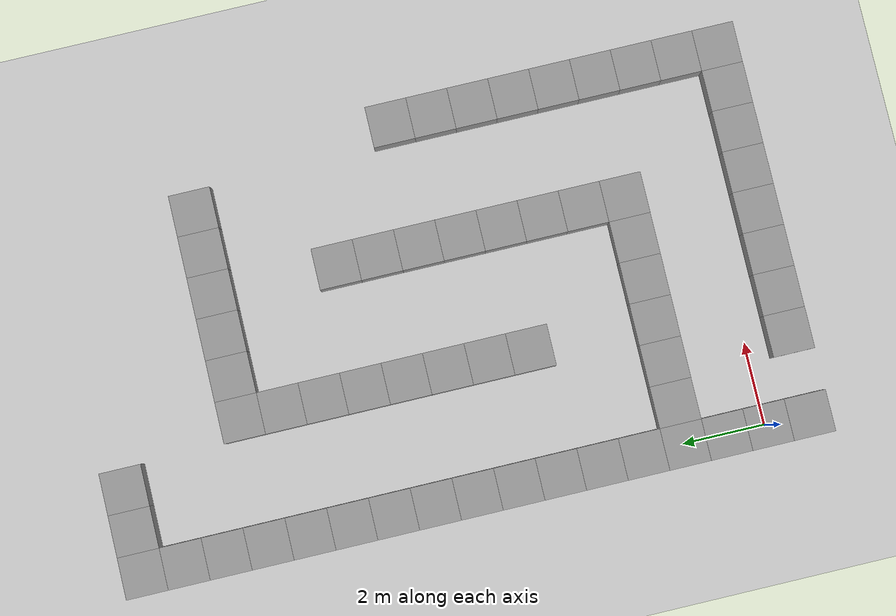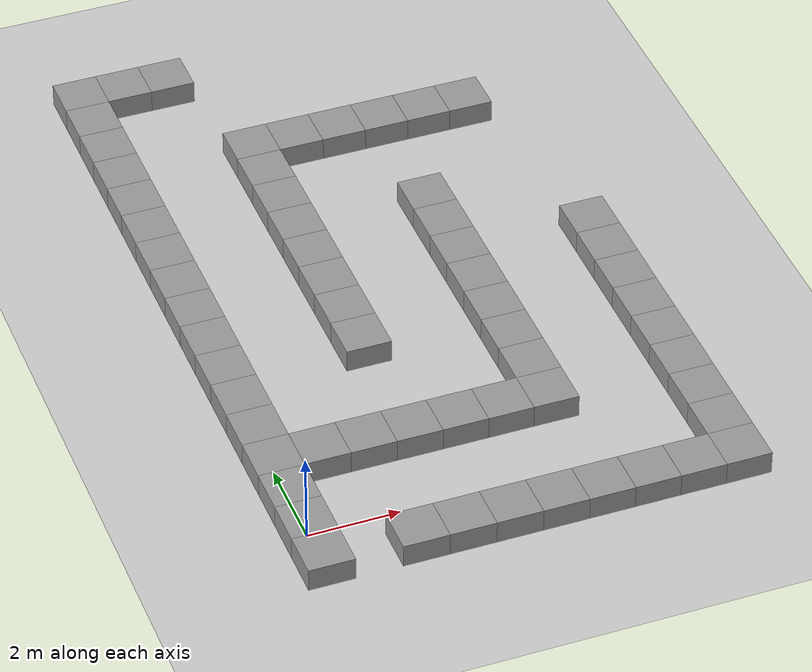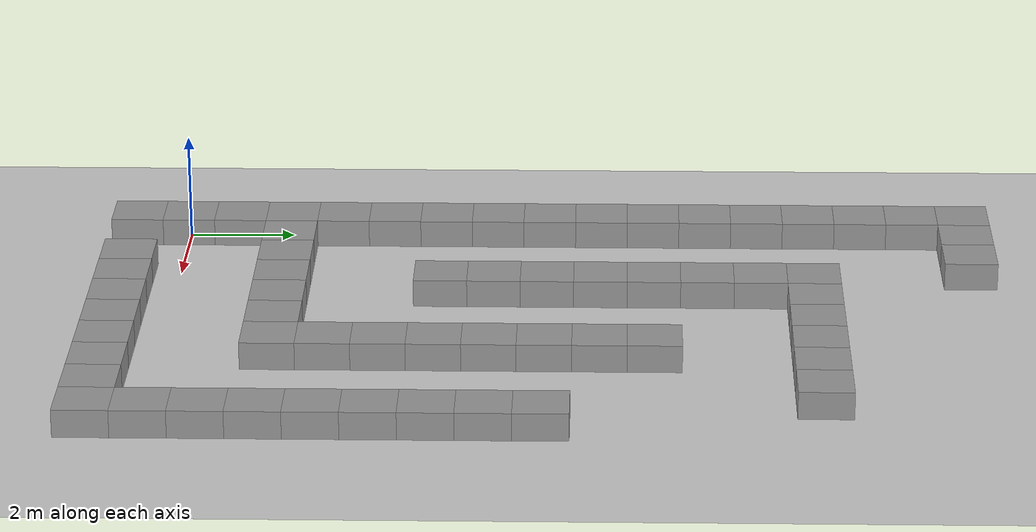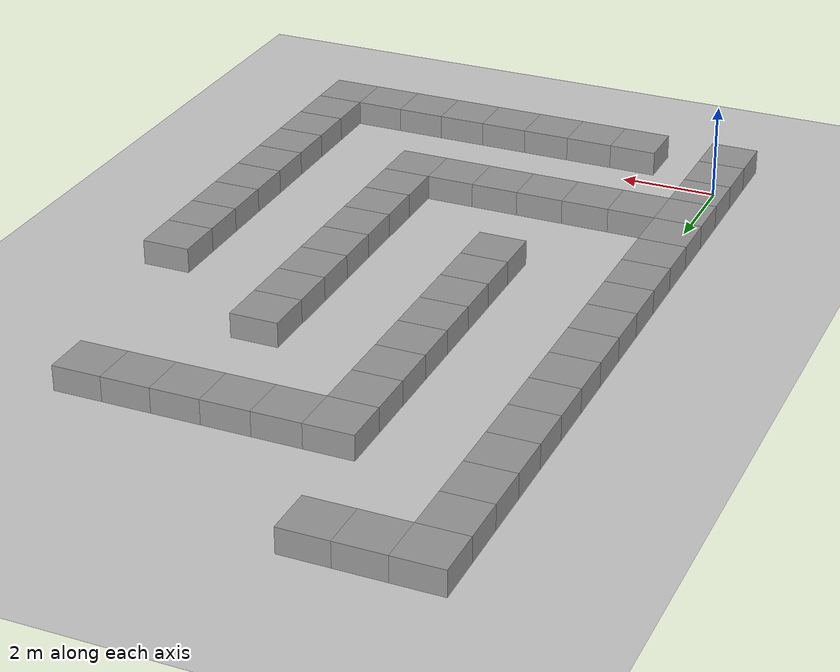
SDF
<sdf version="1.4">
 <world name="default">
  <model name="ground_plane">
   <static>1</static>
   <link name="link">
    <collision name="collision">
     <geometry><plane><normal>0 0 1</normal><size>100 100</size></plane></geometry>
     <surface><friction><ode><mu>100</mu><mu2>50</mu2></ode></friction></surface>
    </collision>
    <visual name="visual">
     <cast_shadows>0</cast_shadows>
     <geometry><plane><normal>0 0 1</normal><size>100 100</size></plane></geometry>
     <material>
      <script><uri>file://media/materials/scripts/gazebo.material</uri><name>Gazebo/Grey</name></script>
     </material>
    </visual>
    <velocity_decay><linear>0</linear><angular>0</angular></velocity_decay>
   </link>
  </model>
  <model name="unit_box_1">
   <pose>0 -1 0 0 -0 0</pose>
   <link name="link">
    <inertial>
     <mass>1</mass>
     <inertia><ixx>1</ixx><ixy>0</ixy><ixz>0</ixz><iyy>1</iyy><iyz>0</iyz><izz>1</izz></inertia>
    </inertial>
    <collision name="collision"><geometry><box><size>1 1 1</size></box></geometry></collision>
    <visual name="visual">
     <geometry><box><size>1 1 1</size></box></geometry>
     <material>
      <script><uri>file://media/materials/scripts/gazebo.material</uri><name>Gazebo/Grey</name></script>
     </material>
    </visual>
    <velocity_decay><linear>0</linear><angular>0</angular></velocity_decay>
   </link>
   <static>1</static>
  </model>
  <model name="unit_box_2">
   <pose>2 -1 0 0 -0 0</pose>
   <link name="link">
    <inertial>
     <mass>1</mass>
     <inertia><ixx>1</ixx><ixy>0</ixy><ixz>0</ixz><iyy>1</iyy><iyz>0</iyz><izz>1</izz></inertia>
    </inertial>
    <collision name="collision"><geometry><box><size>1 1 1</size></box></geometry></collision>
    <visual name="visual">
     <geometry><box><size>1 1 1</size></box></geometry>
     <material>
      <script><uri>file://media/materials/scripts/gazebo.material</uri><name>Gazebo/Grey</name></script>
     </material>
    </visual>
    <velocity_decay><linear>0</linear><angular>0</angular></velocity_decay>
   </link>
   <static>1</static>
  </model>
  <model name="unit_box_3">
   <pose>3 -1 0 0 -0 0</pose>
   <link name="link">
    <inertial>
     <mass>1</mass>
     <inertia><ixx>1</ixx><ixy>0</ixy><ixz>0</ixz><iyy>1</iyy><iyz>0</iyz><izz>1</izz></inertia>
    </inertial>
    <collision name="collision"><geometry><box><size>1 1 1</size></box></geometry></collision>
    <visual name="visual">
     <geometry><box><size>1 1 1</size></box></geometry>
     <material>
      <script><uri>file://media/materials/scripts/gazebo.material</uri><name>Gazebo/Grey</name></script>
     </material>
    </visual>
    <velocity_decay><linear>0</linear><angular>0</angular></velocity_decay>
   </link>
   <static>1</static>
  </model>
  <model name="unit_box_4">
   <pose>4 -1 0 0 -0 0</pose>
   <link name="link">
    <inertial>
     <mass>1</mass>
     <inertia><ixx>1</ixx><ixy>0</ixy><ixz>0</ixz><iyy>1</iyy><iyz>0</iyz><izz>1</izz></inertia>
    </inertial>
    <collision name="collision"><geometry><box><size>1 1 1</size></box></geometry></collision>
    <visual name="visual">
     <geometry><box><size>1 1 1</size></box></geometry>
     <material>
      <script><uri>file://media/materials/scripts/gazebo.material</uri><name>Gazebo/Grey</name></script>
     </material>
    </visual>
    <velocity_decay><linear>0</linear><angular>0</angular></velocity_decay>
   </link>
   <static>1</static>
  </model>
  <model name="unit_box_5">
   <pose>5 -1 0 0 -0 0</pose>
   <link name="link">
    <inertial>
     <mass>1</mass>
     <inertia><ixx>1</ixx><ixy>0</ixy><ixz>0</ixz><iyy>1</iyy><iyz>0</iyz><izz>1</izz></inertia>
    </inertial>
    <collision name="collision"><geometry><box><size>1 1 1</size></box></geometry></collision>
    <visual name="visual">
     <geometry><box><size>1 1 1</size></box></geometry>
     <material>
      <script><uri>file://media/materials/scripts/gazebo.material</uri><name>Gazebo/Grey</name></script>
     </material>
    </visual>
    <velocity_decay><linear>0</linear><angular>0</angular></velocity_decay>
   </link>
   <static>1</static>
  </model>
  <model name="unit_box_6">
   <pose>6 -1 0 0 -0 0</pose>
   <link name="link">
    <inertial>
     <mass>1</mass>
     <inertia><ixx>1</ixx><ixy>0</ixy><ixz>0</ixz><iyy>1</iyy><iyz>0</iyz><izz>1</izz></inertia>
    </inertial>
    <collision name="collision"><geometry><box><size>1 1 1</size></box></geometry></collision>
    <visual name="visual">
     <geometry><box><size>1 1 1</size></box></geometry>
     <material>
      <script><uri>file://media/materials/scripts/gazebo.material</uri><name>Gazebo/Grey</name></script>
     </material>
    </visual>
    <velocity_decay><linear>0</linear><angular>0</angular></velocity_decay>
   </link>
   <static>1</static>
  </model>
  <model name="unit_box_7">
   <pose>7 -1 0 0 -0 0</pose>
   <link name="link">
    <inertial>
     <mass>1</mass>
     <inertia><ixx>1</ixx><ixy>0</ixy><ixz>0</ixz><iyy>1</iyy><iyz>0</iyz><izz>1</izz></inertia>
    </inertial>
    <collision name="collision"><geometry><box><size>1 1 1</size></box></geometry></collision>
    <visual name="visual">
     <geometry><box><size>1 1 1</size></box></geometry>
     <material>
      <script><uri>file://media/materials/scripts/gazebo.material</uri><name>Gazebo/Grey</name></script>
     </material>
    </visual>
    <velocity_decay><linear>0</linear><angular>0</angular></velocity_decay>
   </link>
   <static>1</static>
  </model>
  <model name="unit_box_8">
   <pose>8 -1 0 0 -0 0</pose>
   <link name="link">
    <inertial>
     <mass>1</mass>
     <inertia><ixx>1</ixx><ixy>0</ixy><ixz>0</ixz><iyy>1</iyy><iyz>0</iyz><izz>1</izz></inertia>
    </inertial>
    <collision name="collision"><geometry><box><size>1 1 1</size></box></geometry></collision>
    <visual name="visual">
     <geometry><box><size>1 1 1</size></box></geometry>
     <material>
      <script><uri>file://media/materials/scripts/gazebo.material</uri><name>Gazebo/Grey</name></script>
     </material>
    </visual>
    <velocity_decay><linear>0</linear><angular>0</angular></velocity_decay>
   </link>
   <static>1</static>
  </model>
  <model name="unit_box_9">
   <pose>9 -1 0 0 -0 0</pose>
   <link name="link">
    <inertial>
     <mass>1</mass>
     <inertia><ixx>1</ixx><ixy>0</ixy><ixz>0</ixz><iyy>1</iyy><iyz>0</iyz><izz>1</izz></inertia>
    </inertial>
    <collision name="collision"><geometry><box><size>1 1 1</size></box></geometry></collision>
    <visual name="visual">
     <geometry><box><size>1 1 1</size></box></geometry>
     <material>
      <script><uri>file://media/materials/scripts/gazebo.material</uri><name>Gazebo/Grey</name></script>
     </material>
    </visual>
    <velocity_decay><linear>0</linear><angular>0</angular></velocity_decay>
   </link>
   <static>1</static>
  </model>
  <model name="unit_box_103">
   <pose>0 15 0 0 -0 0</pose>
   <link name="link">
    <inertial>
     <mass>1</mass>
     <inertia><ixx>1</ixx><ixy>0</ixy><ixz>0</ixz><iyy>1</iyy><iyz>0</iyz><izz>1</izz></inertia>
    </inertial>
    <collision name="collision"><geometry><box><size>1 1 1</size></box></geometry></collision>
    <visual name="visual">
     <geometry><box><size>1 1 1</size></box></geometry>
     <material>
      <script><uri>file://media/materials/scripts/gazebo.material</uri><name>Gazebo/Grey</name></script>
     </material>
    </visual>
    <velocity_decay><linear>0</linear><angular>0</angular></velocity_decay>
   </link>
   <static>1</static>
  </model>
  <model name="unit_box_104">
   <pose>0 14 0 0 -0 0</pose>
   <link name="link">
    <inertial>
     <mass>1</mass>
     <inertia><ixx>1</ixx><ixy>0</ixy><ixz>0</ixz><iyy>1</iyy><iyz>0</iyz><izz>1</izz></inertia>
    </inertial>
    <collision name="collision"><geometry><box><size>1 1 1</size></box></geometry></collision>
    <visual name="visual">
     <geometry><box><size>1 1 1</size></box></geometry>
     <material>
      <script><uri>file://media/materials/scripts/gazebo.material</uri><name>Gazebo/Grey</name></script>
     </material>
    </visual>
    <velocity_decay><linear>0</linear><angular>0</angular></velocity_decay>
   </link>
   <static>1</static>
  </model>
  <model name="unit_box_105">
   <pose>0 13 0 0 -0 0</pose>
   <link name="link">
    <inertial>
     <mass>1</mass>
     <inertia><ixx>1</ixx><ixy>0</ixy><ixz>0</ixz><iyy>1</iyy><iyz>0</iyz><izz>1</izz></inertia>
    </inertial>
    <collision name="collision"><geometry><box><size>1 1 1</size></box></geometry></collision>
    <visual name="visual">
     <geometry><box><size>1 1 1</size></box></geometry>
     <material>
      <script><uri>file://media/materials/scripts/gazebo.material</uri><name>Gazebo/Grey</name></script>
     </material>
    </visual>
    <velocity_decay><linear>0</linear><angular>0</angular></velocity_decay>
   </link>
   <static>1</static>
  </model>
  <model name="unit_box_106">
   <pose>0 12 0 0 -0 0</pose>
   <link name="link">
    <inertial>
     <mass>1</mass>
     <inertia><ixx>1</ixx><ixy>0</ixy><ixz>0</ixz><iyy>1</iyy><iyz>0</iyz><izz>1</izz></inertia>
    </inertial>
    <collision name="collision"><geometry><box><size>1 1 1</size></box></geometry></collision>
    <visual name="visual">
     <geometry><box><size>1 1 1</size></box></geometry>
     <material>
      <script><uri>file://media/materials/scripts/gazebo.material</uri><name>Gazebo/Grey</name></script>
     </material>
    </visual>
    <velocity_decay><linear>0</linear><angular>0</angular></velocity_decay>
   </link>
   <static>1</static>
  </model>
  <model name="unit_box_107">
   <pose>0 11 0 0 -0 0</pose>
   <link name="link">
    <inertial>
     <mass>1</mass>
     <inertia><ixx>1</ixx><ixy>0</ixy><ixz>0</ixz><iyy>1</iyy><iyz>0</iyz><izz>1</izz></inertia>
    </inertial>
    <collision name="collision"><geometry><box><size>1 1 1</size></box></geometry></collision>
    <visual name="visual">
     <geometry><box><size>1 1 1</size></box></geometry>
     <material>
      <script><uri>file://media/materials/scripts/gazebo.material</uri><name>Gazebo/Grey</name></script>
     </material>
    </visual>
    <velocity_decay><linear>0</linear><angular>0</angular></velocity_decay>
   </link>
   <static>1</static>
  </model>
  <model name="unit_box_108">
   <pose>0 10 0 0 -0 0</pose>
   <link name="link">
    <inertial>
     <mass>1</mass>
     <inertia><ixx>1</ixx><ixy>0</ixy><ixz>0</ixz><iyy>1</iyy><iyz>0</iyz><izz>1</izz></inertia>
    </inertial>
    <collision name="collision"><geometry><box><size>1 1 1</size></box></geometry></collision>
    <visual name="visual">
     <geometry><box><size>1 1 1</size></box></geometry>
     <material>
      <script><uri>file://media/materials/scripts/gazebo.material</uri><name>Gazebo/Grey</name></script>
     </material>
    </visual>
    <velocity_decay><linear>0</linear><angular>0</angular></velocity_decay>
   </link>
   <static>1</static>
  </model>
  <model name="unit_box_109">
   <pose>0 9 0 0 -0 0</pose>
   <link name="link">
    <inertial>
     <mass>1</mass>
     <inertia><ixx>1</ixx><ixy>0</ixy><ixz>0</ixz><iyy>1</iyy><iyz>0</iyz><izz>1</izz></inertia>
    </inertial>
    <collision name="collision"><geometry><box><size>1 1 1</size></box></geometry></collision>
    <visual name="visual">
     <geometry><box><size>1 1 1</size></box></geometry>
     <material>
      <script><uri>file://media/materials/scripts/gazebo.material</uri><name>Gazebo/Grey</name></script>
     </material>
    </visual>
    <velocity_decay><linear>0</linear><angular>0</angular></velocity_decay>
   </link>
   <static>1</static>
  </model>
  <model name="unit_box_110">
   <pose>0 8 0 0 -0 0</pose>
   <link name="link">
    <inertial>
     <mass>1</mass>
     <inertia><ixx>1</ixx><ixy>0</ixy><ixz>0</ixz><iyy>1</iyy><iyz>0</iyz><izz>1</izz></inertia>
    </inertial>
    <collision name="collision"><geometry><box><size>1 1 1</size></box></geometry></collision>
    <visual name="visual">
     <geometry><box><size>1 1 1</size></box></geometry>
     <material>
      <script><uri>file://media/materials/scripts/gazebo.material</uri><name>Gazebo/Grey</name></script>
     </material>
    </visual>
    <velocity_decay><linear>0</linear><angular>0</angular></velocity_decay>
   </link>
   <static>1</static>
  </model>
  <model name="unit_box_111">
   <pose>0 7 0 0 -0 0</pose>
   <link name="link">
    <inertial>
     <mass>1</mass>
     <inertia><ixx>1</ixx><ixy>0</ixy><ixz>0</ixz><iyy>1</iyy><iyz>0</iyz><izz>1</izz></inertia>
    </inertial>
    <collision name="collision"><geometry><box><size>1 1 1</size></box></geometry></collision>
    <visual name="visual">
     <geometry><box><size>1 1 1</size></box></geometry>
     <material>
      <script><uri>file://media/materials/scripts/gazebo.material</uri><name>Gazebo/Grey</name></script>
     </material>
    </visual>
    <velocity_decay><linear>0</linear><angular>0</angular></velocity_decay>
   </link>
   <static>1</static>
  </model>
  <model name="unit_box_112">
   <pose>0 6 0 0 -0 0</pose>
   <link name="link">
    <inertial>
     <mass>1</mass>
     <inertia><ixx>1</ixx><ixy>0</ixy><ixz>0</ixz><iyy>1</iyy><iyz>0</iyz><izz>1</izz></inertia>
    </inertial>
    <collision name="collision"><geometry><box><size>1 1 1</size></box></geometry></collision>
    <visual name="visual">
     <geometry><box><size>1 1 1</size></box></geometry>
     <material>
      <script><uri>file://media/materials/scripts/gazebo.material</uri><name>Gazebo/Grey</name></script>
     </material>
    </visual>
    <velocity_decay><linear>0</linear><angular>0</angular></velocity_decay>
   </link>
   <static>1</static>
  </model>
  <model name="unit_box_113">
   <pose>0 5 0 0 -0 0</pose>
   <link name="link">
    <inertial>
     <mass>1</mass>
     <inertia><ixx>1</ixx><ixy>0</ixy><ixz>0</ixz><iyy>1</iyy><iyz>0</iyz><izz>1</izz></inertia>
    </inertial>
    <collision name="collision"><geometry><box><size>1 1 1</size></box></geometry></collision>
    <visual name="visual">
     <geometry><box><size>1 1 1</size></box></geometry>
     <material>
      <script><uri>file://media/materials/scripts/gazebo.material</uri><name>Gazebo/Grey</name></script>
     </material>
    </visual>
    <velocity_decay><linear>0</linear><angular>0</angular></velocity_decay>
   </link>
   <static>1</static>
  </model>
  <model name="unit_box_114">
   <pose>0 4 0 0 -0 0</pose>
   <link name="link">
    <inertial>
     <mass>1</mass>
     <inertia><ixx>1</ixx><ixy>0</ixy><ixz>0</ixz><iyy>1</iyy><iyz>0</iyz><izz>1</izz></inertia>
    </inertial>
    <collision name="collision"><geometry><box><size>1 1 1</size></box></geometry></collision>
    <visual name="visual">
     <geometry><box><size>1 1 1</size></box></geometry>
     <material>
      <script><uri>file://media/materials/scripts/gazebo.material</uri><name>Gazebo/Grey</name></script>
     </material>
    </visual>
    <velocity_decay><linear>0</linear><angular>0</angular></velocity_decay>
   </link>
   <static>1</static>
  </model>
  <model name="unit_box_115">
   <pose>0 3 0 0 -0 0</pose>
   <link name="link">
    <inertial>
     <mass>1</mass>
     <inertia><ixx>1</ixx><ixy>0</ixy><ixz>0</ixz><iyy>1</iyy><iyz>0</iyz><izz>1</izz></inertia>
    </inertial>
    <collision name="collision"><geometry><box><size>1 1 1</size></box></geometry></collision>
    <visual name="visual">
     <geometry><box><size>1 1 1</size></box></geometry>
     <material>
      <script><uri>file://media/materials/scripts/gazebo.material</uri><name>Gazebo/Grey</name></script>
     </material>
    </visual>
    <velocity_decay><linear>0</linear><angular>0</angular></velocity_decay>
   </link>
   <static>1</static>
  </model>
  <model name="unit_box_116">
   <pose>0 2 0 0 -0 0</pose>
   <link name="link">
    <inertial>
     <mass>1</mass>
     <inertia><ixx>1</ixx><ixy>0</ixy><ixz>0</ixz><iyy>1</iyy><iyz>0</iyz><izz>1</izz></inertia>
    </inertial>
    <collision name="collision"><geometry><box><size>1 1 1</size></box></geometry></collision>
    <visual name="visual">
     <geometry><box><size>1 1 1</size></box></geometry>
     <material>
      <script><uri>file://media/materials/scripts/gazebo.material</uri><name>Gazebo/Grey</name></script>
     </material>
    </visual>
    <velocity_decay><linear>0</linear><angular>0</angular></velocity_decay>
   </link>
   <static>1</static>
  </model>
  <model name="unit_box_117">
   <pose>0 1 0 0 -0 0</pose>
   <link name="link">
    <inertial>
     <mass>1</mass>
     <inertia><ixx>1</ixx><ixy>0</ixy><ixz>0</ixz><iyy>1</iyy><iyz>0</iyz><izz>1</izz></inertia>
    </inertial>
    <collision name="collision"><geometry><box><size>1 1 1</size></box></geometry></collision>
    <visual name="visual">
     <geometry><box><size>1 1 1</size></box></geometry>
     <material>
      <script><uri>file://media/materials/scripts/gazebo.material</uri><name>Gazebo/Grey</name></script>
     </material>
    </visual>
    <velocity_decay><linear>0</linear><angular>0</angular></velocity_decay>
   </link>
   <static>1</static>
  </model>
  <model name="unit_box_118">
   <link name="link">
    <inertial>
     <mass>1</mass>
     <inertia><ixx>1</ixx><ixy>0</ixy><ixz>0</ixz><iyy>1</iyy><iyz>0</iyz><izz>1</izz></inertia>
    </inertial>
    <collision name="collision"><geometry><box><size>1 1 1</size></box></geometry></collision>
    <visual name="visual">
     <geometry><box><size>1 1 1</size></box></geometry>
     <material>
      <script><uri>file://media/materials/scripts/gazebo.material</uri><name>Gazebo/Grey</name></script>
     </material>
    </visual>
    <velocity_decay><linear>0</linear><angular>0</angular></velocity_decay>
   </link>
   <static>1</static>
  </model>
  <model name="unit_box_119">
   <pose>1 2 0 0 -0 0</pose>
   <link name="link">
    <inertial>
     <mass>1</mass>
     <inertia><ixx>1</ixx><ixy>0</ixy><ixz>0</ixz><iyy>1</iyy><iyz>0</iyz><izz>1</izz></inertia>
    </inertial>
    <collision name="collision"><geometry><box><size>1 1 1</size></box></geometry></collision>
    <visual name="visual">
     <geometry><box><size>1 1 1</size></box></geometry>
     <material>
      <script><uri>file://media/materials/scripts/gazebo.material</uri><name>Gazebo/Grey</name></script>
     </material>
    </visual>
    <velocity_decay><linear>0</linear><angular>0</angular></velocity_decay>
   </link>
   <static>1</static>
  </model>
  <model name="unit_box_120">
   <pose>2 2 0 0 -0 0</pose>
   <link name="link">
    <inertial>
     <mass>1</mass>
     <inertia><ixx>1</ixx><ixy>0</ixy><ixz>0</ixz><iyy>1</iyy><iyz>0</iyz><izz>1</izz></inertia>
    </inertial>
    <collision name="collision"><geometry><box><size>1 1 1</size></box></geometry></collision>
    <visual name="visual">
     <geometry><box><size>1 1 1</size></box></geometry>
     <material>
      <script><uri>file://media/materials/scripts/gazebo.material</uri><name>Gazebo/Grey</name></script>
     </material>
    </visual>
    <velocity_decay><linear>0</linear><angular>0</angular></velocity_decay>
   </link>
   <static>1</static>
  </model>
  <model name="unit_box_121">
   <pose>3 2 0 0 -0 0</pose>
   <link name="link">
    <inertial>
     <mass>1</mass>
     <inertia><ixx>1</ixx><ixy>0</ixy><ixz>0</ixz><iyy>1</iyy><iyz>0</iyz><izz>1</izz></inertia>
    </inertial>
    <collision name="collision"><geometry><box><size>1 1 1</size></box></geometry></collision>
    <visual name="visual">
     <geometry><box><size>1 1 1</size></box></geometry>
     <material>
      <script><uri>file://media/materials/scripts/gazebo.material</uri><name>Gazebo/Grey</name></script>
     </material>
    </visual>
    <velocity_decay><linear>0</linear><angular>0</angular></velocity_decay>
   </link>
   <static>1</static>
  </model>
  <model name="unit_box_122">
   <pose>4 2 0 0 -0 0</pose>
   <link name="link">
    <inertial>
     <mass>1</mass>
     <inertia><ixx>1</ixx><ixy>0</ixy><ixz>0</ixz><iyy>1</iyy><iyz>0</iyz><izz>1</izz></inertia>
    </inertial>
    <collision name="collision"><geometry><box><size>1 1 1</size></box></geometry></collision>
    <visual name="visual">
     <geometry><box><size>1 1 1</size></box></geometry>
     <material>
      <script><uri>file://media/materials/scripts/gazebo.material</uri><name>Gazebo/Grey</name></script>
     </material>
    </visual>
    <velocity_decay><linear>0</linear><angular>0</angular></velocity_decay>
   </link>
   <static>1</static>
  </model>
  <model name="unit_box_123">
   <pose>5 2 0 0 -0 0</pose>
   <link name="link">
    <inertial>
     <mass>1</mass>
     <inertia><ixx>1</ixx><ixy>0</ixy><ixz>0</ixz><iyy>1</iyy><iyz>0</iyz><izz>1</izz></inertia>
    </inertial>
    <collision name="collision"><geometry><box><size>1 1 1</size></box></geometry></collision>
    <visual name="visual">
     <geometry><box><size>1 1 1</size></box></geometry>
     <material>
      <script><uri>file://media/materials/scripts/gazebo.material</uri><name>Gazebo/Grey</name></script>
     </material>
    </visual>
    <velocity_decay><linear>0</linear><angular>0</angular></velocity_decay>
   </link>
   <static>1</static>
  </model>
  <model name="unit_box_124">
   <pose>6 2 0 0 -0 0</pose>
   <link name="link">
    <inertial>
     <mass>1</mass>
     <inertia><ixx>1</ixx><ixy>0</ixy><ixz>0</ixz><iyy>1</iyy><iyz>0</iyz><izz>1</izz></inertia>
    </inertial>
    <collision name="collision"><geometry><box><size>1 1 1</size></box></geometry></collision>
    <visual name="visual">
     <geometry><box><size>1 1 1</size></box></geometry>
     <material>
      <script><uri>file://media/materials/scripts/gazebo.material</uri><name>Gazebo/Grey</name></script>
     </material>
    </visual>
    <velocity_decay><linear>0</linear><angular>0</angular></velocity_decay>
   </link>
   <static>1</static>
  </model>
  <model name="unit_box_125">
   <pose>9 0 0 0 -0 0</pose>
   <link name="link">
    <inertial>
     <mass>1</mass>
     <inertia><ixx>1</ixx><ixy>0</ixy><ixz>0</ixz><iyy>1</iyy><iyz>0</iyz><izz>1</izz></inertia>
    </inertial>
    <collision name="collision"><geometry><box><size>1 1 1</size></box></geometry></collision>
    <visual name="visual">
     <geometry><box><size>1 1 1</size></box></geometry>
     <material>
      <script><uri>file://media/materials/scripts/gazebo.material</uri><name>Gazebo/Grey</name></script>
     </material>
    </visual>
    <velocity_decay><linear>0</linear><angular>0</angular></velocity_decay>
   </link>
   <static>1</static>
  </model>
  <model name="unit_box_126">
   <pose>9 1 0 0 -0 0</pose>
   <link name="link">
    <inertial>
     <mass>1</mass>
     <inertia><ixx>1</ixx><ixy>0</ixy><ixz>0</ixz><iyy>1</iyy><iyz>0</iyz><izz>1</izz></inertia>
    </inertial>
    <collision name="collision"><geometry><box><size>1 1 1</size></box></geometry></collision>
    <visual name="visual">
     <geometry><box><size>1 1 1</size></box></geometry>
     <material>
      <script><uri>file://media/materials/scripts/gazebo.material</uri><name>Gazebo/Grey</name></script>
     </material>
    </visual>
    <velocity_decay><linear>0</linear><angular>0</angular></velocity_decay>
   </link>
   <static>1</static>
  </model>
  <model name="unit_box_127">
   <pose>9 2 0 0 -0 0</pose>
   <link name="link">
    <inertial>
     <mass>1</mass>
     <inertia><ixx>1</ixx><ixy>0</ixy><ixz>0</ixz><iyy>1</iyy><iyz>0</iyz><izz>1</izz></inertia>
    </inertial>
    <collision name="collision"><geometry><box><size>1 1 1</size></box></geometry></collision>
    <visual name="visual">
     <geometry><box><size>1 1 1</size></box></geometry>
     <material>
      <script><uri>file://media/materials/scripts/gazebo.material</uri><name>Gazebo/Grey</name></script>
     </material>
    </visual>
    <velocity_decay><linear>0</linear><angular>0</angular></velocity_decay>
   </link>
   <static>1</static>
  </model>
  <model name="unit_box_128">
   <pose>9 3 0 0 -0 0</pose>
   <link name="link">
    <inertial>
     <mass>1</mass>
     <inertia><ixx>1</ixx><ixy>0</ixy><ixz>0</ixz><iyy>1</iyy><iyz>0</iyz><izz>1</izz></inertia>
    </inertial>
    <collision name="collision"><geometry><box><size>1 1 1</size></box></geometry></collision>
    <visual name="visual">
     <geometry><box><size>1 1 1</size></box></geometry>
     <material>
      <script><uri>file://media/materials/scripts/gazebo.material</uri><name>Gazebo/Grey</name></script>
     </material>
    </visual>
    <velocity_decay><linear>0</linear><angular>0</angular></velocity_decay>
   </link>
   <static>1</static>
  </model>
  <model name="unit_box_129">
   <pose>9 4 0 0 -0 0</pose>
   <link name="link">
    <inertial>
     <mass>1</mass>
     <inertia><ixx>1</ixx><ixy>0</ixy><ixz>0</ixz><iyy>1</iyy><iyz>0</iyz><izz>1</izz></inertia>
    </inertial>
    <collision name="collision"><geometry><box><size>1 1 1</size></box></geometry></collision>
    <visual name="visual">
     <geometry><box><size>1 1 1</size></box></geometry>
     <material>
      <script><uri>file://media/materials/scripts/gazebo.material</uri><name>Gazebo/Grey</name></script>
     </material>
    </visual>
    <velocity_decay><linear>0</linear><angular>0</angular></velocity_decay>
   </link>
   <static>1</static>
  </model>
  <model name="unit_box_130">
   <pose>9 5 0 0 -0 0</pose>
   <link name="link">
    <inertial>
     <mass>1</mass>
     <inertia><ixx>1</ixx><ixy>0</ixy><ixz>0</ixz><iyy>1</iyy><iyz>0</iyz><izz>1</izz></inertia>
    </inertial>
    <collision name="collision"><geometry><box><size>1 1 1</size></box></geometry></collision>
    <visual name="visual">
     <geometry><box><size>1 1 1</size></box></geometry>
     <material>
      <script><uri>file://media/materials/scripts/gazebo.material</uri><name>Gazebo/Grey</name></script>
     </material>
    </visual>
    <velocity_decay><linear>0</linear><angular>0</angular></velocity_decay>
   </link>
   <static>1</static>
  </model>
  <model name="unit_box_131">
   <pose>9 6 0 0 -0 0</pose>
   <link name="link">
    <inertial>
     <mass>1</mass>
     <inertia><ixx>1</ixx><ixy>0</ixy><ixz>0</ixz><iyy>1</iyy><iyz>0</iyz><izz>1</izz></inertia>
    </inertial>
    <collision name="collision"><geometry><box><size>1 1 1</size></box></geometry></collision>
    <visual name="visual">
     <geometry><box><size>1 1 1</size></box></geometry>
     <material>
      <script><uri>file://media/materials/scripts/gazebo.material</uri><name>Gazebo/Grey</name></script>
     </material>
    </visual>
    <velocity_decay><linear>0</linear><angular>0</angular></velocity_decay>
   </link>
   <static>1</static>
  </model>
  <model name="unit_box_132">
   <pose>9 7 0 0 -0 0</pose>
   <link name="link">
    <inertial>
     <mass>1</mass>
     <inertia><ixx>1</ixx><ixy>0</ixy><ixz>0</ixz><iyy>1</iyy><iyz>0</iyz><izz>1</izz></inertia>
    </inertial>
    <collision name="collision"><geometry><box><size>1 1 1</size></box></geometry></collision>
    <visual name="visual">
     <geometry><box><size>1 1 1</size></box></geometry>
     <material>
      <script><uri>file://media/materials/scripts/gazebo.material</uri><name>Gazebo/Grey</name></script>
     </material>
    </visual>
    <velocity_decay><linear>0</linear><angular>0</angular></velocity_decay>
   </link>
   <static>1</static>
  </model>
  <model name="unit_box_135">
   <pose>6 3 0 0 -0 0</pose>
   <link name="link">
    <inertial>
     <mass>1</mass>
     <inertia><ixx>1</ixx><ixy>0</ixy><ixz>0</ixz><iyy>1</iyy><iyz>0</iyz><izz>1</izz></inertia>
    </inertial>
    <collision name="collision"><geometry><box><size>1 1 1</size></box></geometry></collision>
    <visual name="visual">
     <geometry><box><size>1 1 1</size></box></geometry>
     <material>
      <script><uri>file://media/materials/scripts/gazebo.material</uri><name>Gazebo/Grey</name></script>
     </material>
    </visual>
    <velocity_decay><linear>0</linear><angular>0</angular></velocity_decay>
   </link>
   <static>1</static>
  </model>
  <model name="unit_box_136">
   <pose>6 4 0 0 -0 0</pose>
   <link name="link">
    <inertial>
     <mass>1</mass>
     <inertia><ixx>1</ixx><ixy>0</ixy><ixz>0</ixz><iyy>1</iyy><iyz>0</iyz><izz>1</izz></inertia>
    </inertial>
    <collision name="collision"><geometry><box><size>1 1 1</size></box></geometry></collision>
    <visual name="visual">
     <geometry><box><size>1 1 1</size></box></geometry>
     <material>
      <script><uri>file://media/materials/scripts/gazebo.material</uri><name>Gazebo/Grey</name></script>
     </material>
    </visual>
    <velocity_decay><linear>0</linear><angular>0</angular></velocity_decay>
   </link>
   <static>1</static>
  </model>
  <model name="unit_box_137">
   <pose>6 5 0 0 -0 0</pose>
   <link name="link">
    <inertial>
     <mass>1</mass>
     <inertia><ixx>1</ixx><ixy>0</ixy><ixz>0</ixz><iyy>1</iyy><iyz>0</iyz><izz>1</izz></inertia>
    </inertial>
    <collision name="collision"><geometry><box><size>1 1 1</size></box></geometry></collision>
    <visual name="visual">
     <geometry><box><size>1 1 1</size></box></geometry>
     <material>
      <script><uri>file://media/materials/scripts/gazebo.material</uri><name>Gazebo/Grey</name></script>
     </material>
    </visual>
    <velocity_decay><linear>0</linear><angular>0</angular></velocity_decay>
   </link>
   <static>1</static>
  </model>
  <model name="unit_box_138">
   <pose>6 6 0 0 -0 0</pose>
   <link name="link">
    <inertial>
     <mass>1</mass>
     <inertia><ixx>1</ixx><ixy>0</ixy><ixz>0</ixz><iyy>1</iyy><iyz>0</iyz><izz>1</izz></inertia>
    </inertial>
    <collision name="collision"><geometry><box><size>1 1 1</size></box></geometry></collision>
    <visual name="visual">
     <geometry><box><size>1 1 1</size></box></geometry>
     <material>
      <script><uri>file://media/materials/scripts/gazebo.material</uri><name>Gazebo/Grey</name></script>
     </material>
    </visual>
    <velocity_decay><linear>0</linear><angular>0</angular></velocity_decay>
   </link>
   <static>1</static>
  </model>
  <model name="unit_box_139">
   <pose>6 7 0 0 -0 0</pose>
   <link name="link">
    <inertial>
     <mass>1</mass>
     <inertia><ixx>1</ixx><ixy>0</ixy><ixz>0</ixz><iyy>1</iyy><iyz>0</iyz><izz>1</izz></inertia>
    </inertial>
    <collision name="collision"><geometry><box><size>1 1 1</size></box></geometry></collision>
    <visual name="visual">
     <geometry><box><size>1 1 1</size></box></geometry>
     <material>
      <script><uri>file://media/materials/scripts/gazebo.material</uri><name>Gazebo/Grey</name></script>
     </material>
    </visual>
    <velocity_decay><linear>0</linear><angular>0</angular></velocity_decay>
   </link>
   <static>1</static>
  </model>
  <model name="unit_box_140">
   <pose>6 8 0 0 -0 0</pose>
   <link name="link">
    <inertial>
     <mass>1</mass>
     <inertia><ixx>1</ixx><ixy>0</ixy><ixz>0</ixz><iyy>1</iyy><iyz>0</iyz><izz>1</izz></inertia>
    </inertial>
    <collision name="collision"><geometry><box><size>1 1 1</size></box></geometry></collision>
    <visual name="visual">
     <geometry><box><size>1 1 1</size></box></geometry>
     <material>
      <script><uri>file://media/materials/scripts/gazebo.material</uri><name>Gazebo/Grey</name></script>
     </material>
    </visual>
    <velocity_decay><linear>0</linear><angular>0</angular></velocity_decay>
   </link>
   <static>1</static>
  </model>
  <model name="unit_box_141">
   <pose>6 9 0 0 -0 0</pose>
   <link name="link">
    <inertial>
     <mass>1</mass>
     <inertia><ixx>1</ixx><ixy>0</ixy><ixz>0</ixz><iyy>1</iyy><iyz>0</iyz><izz>1</izz></inertia>
    </inertial>
    <collision name="collision"><geometry><box><size>1 1 1</size></box></geometry></collision>
    <visual name="visual">
     <geometry><box><size>1 1 1</size></box></geometry>
     <material>
      <script><uri>file://media/materials/scripts/gazebo.material</uri><name>Gazebo/Grey</name></script>
     </material>
    </visual>
    <velocity_decay><linear>0</linear><angular>0</angular></velocity_decay>
   </link>
   <static>1</static>
  </model>
  <model name="unit_box_142">
   <pose>3 5 0 0 -0 0</pose>
   <link name="link">
    <inertial>
     <mass>1</mass>
     <inertia><ixx>1</ixx><ixy>0</ixy><ixz>0</ixz><iyy>1</iyy><iyz>0</iyz><izz>1</izz></inertia>
    </inertial>
    <collision name="collision"><geometry><box><size>1 1 1</size></box></geometry></collision>
    <visual name="visual">
     <geometry><box><size>1 1 1</size></box></geometry>
     <material>
      <script><uri>file://media/materials/scripts/gazebo.material</uri><name>Gazebo/Grey</name></script>
     </material>
    </visual>
    <velocity_decay><linear>0</linear><angular>0</angular></velocity_decay>
   </link>
   <static>1</static>
  </model>
  <model name="unit_box_143">
   <pose>3 6 0 0 -0 0</pose>
   <link name="link">
    <inertial>
     <mass>1</mass>
     <inertia><ixx>1</ixx><ixy>0</ixy><ixz>0</ixz><iyy>1</iyy><iyz>0</iyz><izz>1</izz></inertia>
    </inertial>
    <collision name="collision"><geometry><box><size>1 1 1</size></box></geometry></collision>
    <visual name="visual">
     <geometry><box><size>1 1 1</size></box></geometry>
     <material>
      <script><uri>file://media/materials/scripts/gazebo.material</uri><name>Gazebo/Grey</name></script>
     </material>
    </visual>
    <velocity_decay><linear>0</linear><angular>0</angular></velocity_decay>
   </link>
   <static>1</static>
  </model>
  <model name="unit_box_144">
   <pose>3 7 0 0 -0 0</pose>
   <link name="link">
    <inertial>
     <mass>1</mass>
     <inertia><ixx>1</ixx><ixy>0</ixy><ixz>0</ixz><iyy>1</iyy><iyz>0</iyz><izz>1</izz></inertia>
    </inertial>
    <collision name="collision"><geometry><box><size>1 1 1</size></box></geometry></collision>
    <visual name="visual">
     <geometry><box><size>1 1 1</size></box></geometry>
     <material>
      <script><uri>file://media/materials/scripts/gazebo.material</uri><name>Gazebo/Grey</name></script>
     </material>
    </visual>
    <velocity_decay><linear>0</linear><angular>0</angular></velocity_decay>
   </link>
   <static>1</static>
  </model>
  <model name="unit_box_145">
   <pose>3 8 0 0 -0 0</pose>
   <link name="link">
    <inertial>
     <mass>1</mass>
     <inertia><ixx>1</ixx><ixy>0</ixy><ixz>0</ixz><iyy>1</iyy><iyz>0</iyz><izz>1</izz></inertia>
    </inertial>
    <collision name="collision"><geometry><box><size>1 1 1</size></box></geometry></collision>
    <visual name="visual">
     <geometry><box><size>1 1 1</size></box></geometry>
     <material>
      <script><uri>file://media/materials/scripts/gazebo.material</uri><name>Gazebo/Grey</name></script>
     </material>
    </visual>
    <velocity_decay><linear>0</linear><angular>0</angular></velocity_decay>
   </link>
   <static>1</static>
  </model>
  <model name="unit_box_146">
   <pose>3 9 0 0 -0 0</pose>
   <link name="link">
    <inertial>
     <mass>1</mass>
     <inertia><ixx>1</ixx><ixy>0</ixy><ixz>0</ixz><iyy>1</iyy><iyz>0</iyz><izz>1</izz></inertia>
    </inertial>
    <collision name="collision"><geometry><box><size>1 1 1</size></box></geometry></collision>
    <visual name="visual">
     <geometry><box><size>1 1 1</size></box></geometry>
     <material>
      <script><uri>file://media/materials/scripts/gazebo.material</uri><name>Gazebo/Grey</name></script>
     </material>
    </visual>
    <velocity_decay><linear>0</linear><angular>0</angular></velocity_decay>
   </link>
   <static>1</static>
  </model>
  <model name="unit_box_147">
   <pose>3 10 0 0 -0 0</pose>
   <link name="link">
    <inertial>
     <mass>1</mass>
     <inertia><ixx>1</ixx><ixy>0</ixy><ixz>0</ixz><iyy>1</iyy><iyz>0</iyz><izz>1</izz></inertia>
    </inertial>
    <collision name="collision"><geometry><box><size>1 1 1</size></box></geometry></collision>
    <visual name="visual">
     <geometry><box><size>1 1 1</size></box></geometry>
     <material>
      <script><uri>file://media/materials/scripts/gazebo.material</uri><name>Gazebo/Grey</name></script>
     </material>
    </visual>
    <velocity_decay><linear>0</linear><angular>0</angular></velocity_decay>
   </link>
   <static>1</static>
  </model>
  <model name="unit_box_148">
   <pose>3 11 0 0 -0 0</pose>
   <link name="link">
    <inertial>
     <mass>1</mass>
     <inertia><ixx>1</ixx><ixy>0</ixy><ixz>0</ixz><iyy>1</iyy><iyz>0</iyz><izz>1</izz></inertia>
    </inertial>
    <collision name="collision"><geometry><box><size>1 1 1</size></box></geometry></collision>
    <visual name="visual">
     <geometry><box><size>1 1 1</size></box></geometry>
     <material>
      <script><uri>file://media/materials/scripts/gazebo.material</uri><name>Gazebo/Grey</name></script>
     </material>
    </visual>
    <velocity_decay><linear>0</linear><angular>0</angular></velocity_decay>
   </link>
   <static>1</static>
  </model>
  <model name="unit_box_149">
   <pose>3 12 0 0 -0 0</pose>
   <link name="link">
    <inertial>
     <mass>1</mass>
     <inertia><ixx>1</ixx><ixy>0</ixy><ixz>0</ixz><iyy>1</iyy><iyz>0</iyz><izz>1</izz></inertia>
    </inertial>
    <collision name="collision"><geometry><box><size>1 1 1</size></box></geometry></collision>
    <visual name="visual">
     <geometry><box><size>1 1 1</size></box></geometry>
     <material>
      <script><uri>file://media/materials/scripts/gazebo.material</uri><name>Gazebo/Grey</name></script>
     </material>
    </visual>
    <velocity_decay><linear>0</linear><angular>0</angular></velocity_decay>
   </link>
   <static>1</static>
  </model>
  <model name="unit_box_150">
   <pose>4 12 0 0 -0 0</pose>
   <link name="link">
    <inertial>
     <mass>1</mass>
     <inertia><ixx>1</ixx><ixy>0</ixy><ixz>0</ixz><iyy>1</iyy><iyz>0</iyz><izz>1</izz></inertia>
    </inertial>
    <collision name="collision"><geometry><box><size>1 1 1</size></box></geometry></collision>
    <visual name="visual">
     <geometry><box><size>1 1 1</size></box></geometry>
     <material>
      <script><uri>file://media/materials/scripts/gazebo.material</uri><name>Gazebo/Grey</name></script>
     </material>
    </visual>
    <velocity_decay><linear>0</linear><angular>0</angular></velocity_decay>
   </link>
   <static>1</static>
  </model>
  <model name="unit_box_151">
   <pose>5 12 0 0 -0 0</pose>
   <link name="link">
    <inertial>
     <mass>1</mass>
     <inertia><ixx>1</ixx><ixy>0</ixy><ixz>0</ixz><iyy>1</iyy><iyz>0</iyz><izz>1</izz></inertia>
    </inertial>
    <collision name="collision"><geometry><box><size>1 1 1</size></box></geometry></collision>
    <visual name="visual">
     <geometry><box><size>1 1 1</size></box></geometry>
     <material>
      <script><uri>file://media/materials/scripts/gazebo.material</uri><name>Gazebo/Grey</name></script>
     </material>
    </visual>
    <velocity_decay><linear>0</linear><angular>0</angular></velocity_decay>
   </link>
   <static>1</static>
  </model>
  <model name="unit_box_152">
   <pose>6 12 0 0 -0 0</pose>
   <link name="link">
    <inertial>
     <mass>1</mass>
     <inertia><ixx>1</ixx><ixy>0</ixy><ixz>0</ixz><iyy>1</iyy><iyz>0</iyz><izz>1</izz></inertia>
    </inertial>
    <collision name="collision"><geometry><box><size>1 1 1</size></box></geometry></collision>
    <visual name="visual">
     <geometry><box><size>1 1 1</size></box></geometry>
     <material>
      <script><uri>file://media/materials/scripts/gazebo.material</uri><name>Gazebo/Grey</name></script>
     </material>
    </visual>
    <velocity_decay><linear>0</linear><angular>0</angular></velocity_decay>
   </link>
   <static>1</static>
  </model>
  <model name="unit_box_153">
   <pose>7 12 0 0 -0 0</pose>
   <link name="link">
    <inertial>
     <mass>1</mass>
     <inertia><ixx>1</ixx><ixy>0</ixy><ixz>0</ixz><iyy>1</iyy><iyz>0</iyz><izz>1</izz></inertia>
    </inertial>
    <collision name="collision"><geometry><box><size>1 1 1</size></box></geometry></collision>
    <visual name="visual">
     <geometry><box><size>1 1 1</size></box></geometry>
     <material>
      <script><uri>file://media/materials/scripts/gazebo.material</uri><name>Gazebo/Grey</name></script>
     </material>
    </visual>
    <velocity_decay><linear>0</linear><angular>0</angular></velocity_decay>
   </link>
   <static>1</static>
  </model>
  <model name="unit_box_154">
   <pose>8 12 0 0 -0 0</pose>
   <link name="link">
    <inertial>
     <mass>1</mass>
     <inertia><ixx>1</ixx><ixy>0</ixy><ixz>0</ixz><iyy>1</iyy><iyz>0</iyz><izz>1</izz></inertia>
    </inertial>
    <collision name="collision"><geometry><box><size>1 1 1</size></box></geometry></collision>
    <visual name="visual">
     <geometry><box><size>1 1 1</size></box></geometry>
     <material>
      <script><uri>file://media/materials/scripts/gazebo.material</uri><name>Gazebo/Grey</name></script>
     </material>
    </visual>
    <velocity_decay><linear>0</linear><angular>0</angular></velocity_decay>
   </link>
   <static>1</static>
  </model>
  <model name="unit_box_240">
   <pose>1 15 0 0 -0 0</pose>
   <link name="link">
    <inertial>
     <mass>1</mass>
     <inertia><ixx>1</ixx><ixy>0</ixy><ixz>0</ixz><iyy>1</iyy><iyz>0</iyz><izz>1</izz></inertia>
    </inertial>
    <collision name="collision"><geometry><box><size>1 1 1</size></box></geometry></collision>
    <visual name="visual">
     <geometry><box><size>1 1 1</size></box></geometry>
     <material>
      <script><uri>file://media/materials/scripts/gazebo.material</uri><name>Gazebo/Grey</name></script>
     </material>
    </visual>
    <velocity_decay><linear>0</linear><angular>0</angular></velocity_decay>
   </link>
   <static>1</static>
  </model>
  <model name="unit_box_241">
   <pose>2 15 0 0 -0 0</pose>
   <link name="link">
    <inertial>
     <mass>1</mass>
     <inertia><ixx>1</ixx><ixy>0</ixy><ixz>0</ixz><iyy>1</iyy><iyz>0</iyz><izz>1</izz></inertia>
    </inertial>
    <collision name="collision"><geometry><box><size>1 1 1</size></box></geometry></collision>
    <visual name="visual">
     <geometry><box><size>1 1 1</size></box></geometry>
     <material>
      <script><uri>file://media/materials/scripts/gazebo.material</uri><name>Gazebo/Grey</name></script>
     </material>
    </visual>
    <velocity_decay><linear>0</linear><angular>0</angular></velocity_decay>
   </link>
   <static>1</static>
  </model>
 </world>
</sdf>
